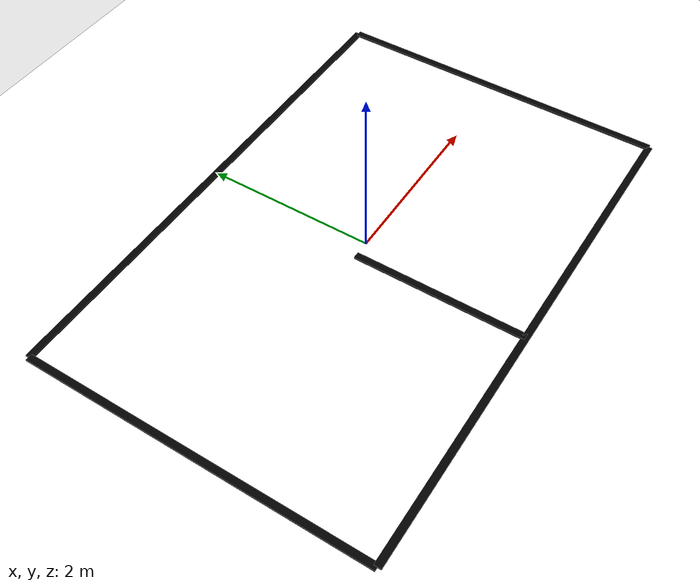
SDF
<?xml version="1.0"?>
<sdf version="1.6">
  <world name="default">

    <physics type="ode">
      <max_step_size>0.001</max_step_size>
      <real_time_factor>1.0</real_time_factor>
      <real_time_update_rate>1000</real_time_update_rate>
      <ode>
        <solver>
          <type>quick</type>
          <iters>50</iters>
        </solver>
      </ode>
    </physics>

    <gui fullscreen="0">
      <camera name="user_camera">
        <pose>0 0 15 0 1.5707 1.5707</pose>
        <view_controller>orbit</view_controller>
      </camera>
    </gui>

    <include>
      <uri>model://sun</uri>
    </include>

    <model name="ground_plane">
      <static>true</static>
      <link name="link">
        <collision name="collision">
          <geometry>
            <plane>
              <normal>0 0 1</normal>
              <size>20 15</size>
            </plane>
          </geometry>
          <surface>
            <friction>
              <ode>
                <mu1>100</mu1>
                <mu2>50</mu2>
              </ode>
            </friction>
          </surface>
        </collision>
        <visual name="visual">
          <cast_shadows>false</cast_shadows>
          <geometry>
            <plane>
              <normal>0 0 1</normal>
              <size>20 15</size>
            </plane>
          </geometry>
          <material>
            <ambient>1 1 1 1</ambient>
            <diffuse>1 1 1 1</diffuse>
            <specular>0 0 0 1</specular>
            <emissive>0 0 0 1</emissive>
          </material>
        </visual>
      </link>
    </model>

    <model name="connection_to_path">
      <static>true</static>
      <pose>-0.2 -1 0.01 0 0 1.57</pose>
      <link name="link">
        <visual name="visual">
          <geometry>
            <box>
              <size>2 0.08 0.02</size>
            </box>
          </geometry>
          <material>
            <ambient>0 0 0 1</ambient>
            <diffuse>0 0 0 1</diffuse>
          </material>
        </visual>
      </link>
    </model>

    <model name="rect_bottom">
      <static>true</static>
      <pose>0 -2 0.01 0 0 0</pose>
      <link name="link">
        <visual name="visual">
          <geometry>
            <box>
              <size>6 0.08 0.02</size>
            </box>
          </geometry>
          <material>
            <ambient>0 0 0 1</ambient>
            <diffuse>0 0 0 1</diffuse>
          </material>
        </visual>
      </link>
    </model>

    <model name="rect_right">
      <static>true</static>
      <pose>3 0 0.01 0 0 1.57</pose>
      <link name="link">
        <visual name="visual">
          <geometry>
            <box>
              <size>4 0.08 0.02</size>
            </box>
          </geometry>
          <material>
            <ambient>0 0 0 1</ambient>
            <diffuse>0 0 0 1</diffuse>
          </material>
        </visual>
      </link>
    </model>

    <model name="rect_top">
      <static>true</static>
      <pose>0 2 0.01 0 0 0</pose>
      <link name="link">
        <visual name="visual">
          <geometry>
            <box>
              <size>6 0.08 0.02</size>
            </box>
          </geometry>
          <material>
            <ambient>0 0 0 1</ambient>
            <diffuse>0 0 0 1</diffuse>
          </material>
        </visual>
      </link>
    </model>

    <model name="rect_left">
      <static>true</static>
      <pose>-3 0 0.01 0 0 1.57</pose>
      <link name="link">
        <visual name="visual">
          <geometry>
            <box>
              <size>4 0.08 0.02</size>
            </box>
          </geometry>
          <material>
            <ambient>0 0 0 1</ambient>
            <diffuse>0 0 0 1</diffuse>
          </material>
        </visual>
      </link>
    </model>

  </world>
</sdf>
